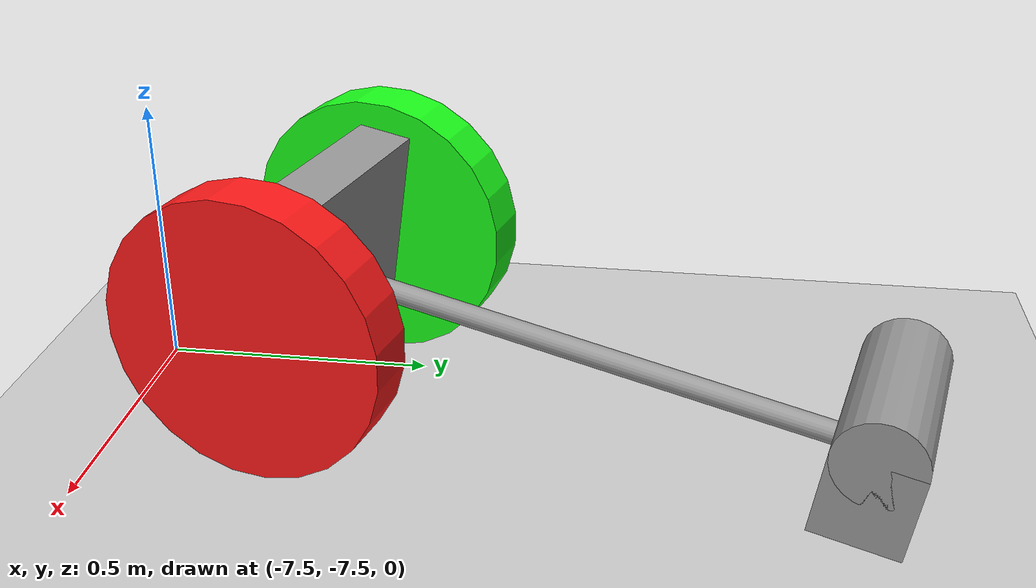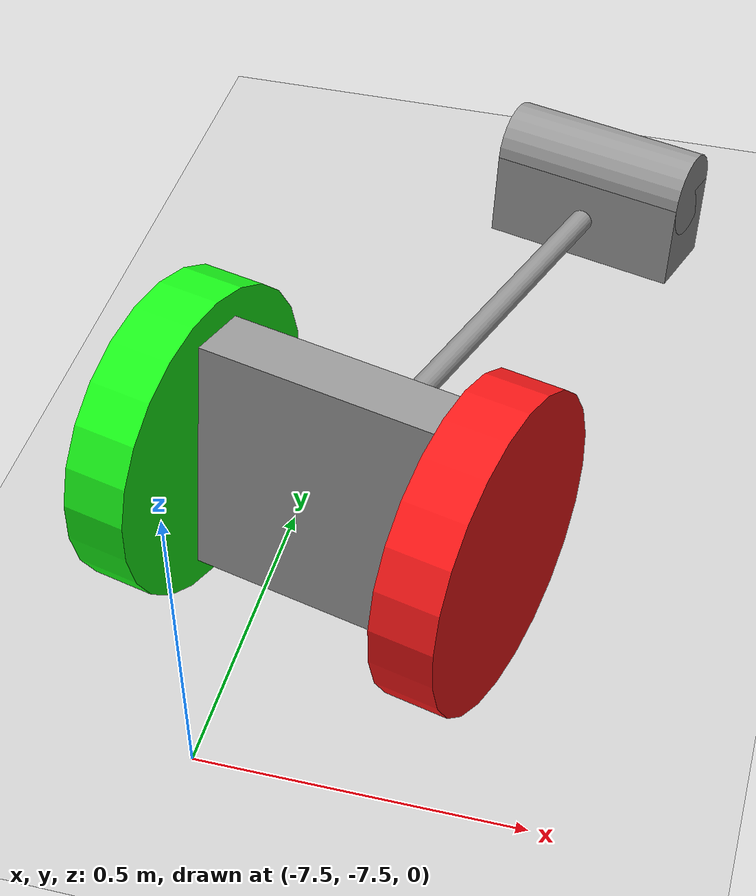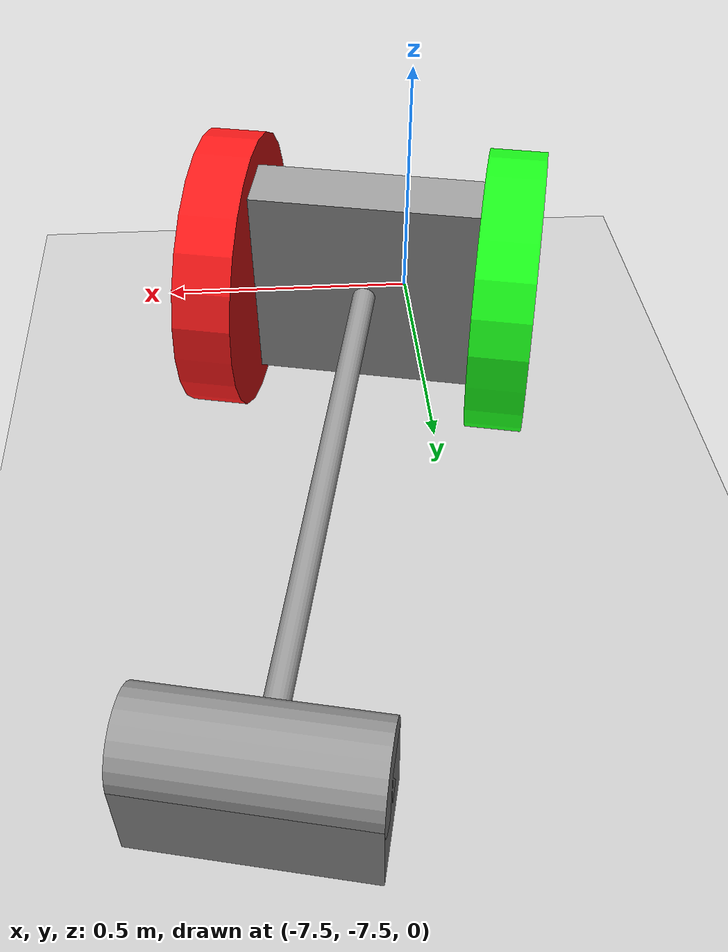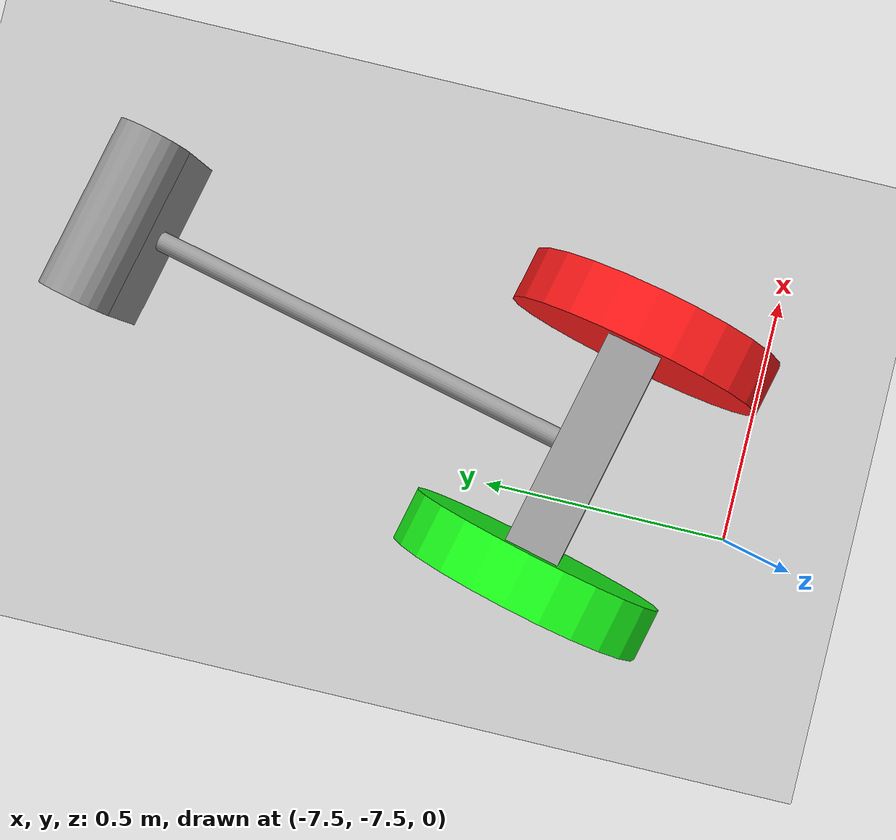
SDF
<sdf version="1.6">
 <world name="default">
  <model name="ground_plane">
   <static>1</static>
   <link name="link">
    <collision name="collision">
     <geometry><plane><normal>0 0 1</normal><size>100 100</size></plane></geometry>
     <surface><friction><ode><mu>100</mu><mu2>50</mu2></ode></friction></surface>
    </collision>
    <visual name="visual">
     <cast_shadows>0</cast_shadows>
     <geometry><plane><normal>0 0 1</normal><size>100 100</size></plane></geometry>
     <material>
      <script><uri>file://media/materials/scripts/gazebo.material</uri><name>Gazebo/Grey</name></script>
     </material>
    </visual>
   </link>
  </model>
  <model name="TwoWheelBalancer_0">
   <link name="link_0">
    <pose>0.012232 0 -0.27143 0 -0 0</pose>
    <inertial>
     <mass>1</mass>
     <inertia>
      <ixx>0.166667</ixx>
      <ixy>0</ixy>
      <ixz>0</ixz>
      <iyy>0.166667</iyy>
      <iyz>0</iyz>
      <izz>0.166667</izz>
     </inertia>
    </inertial>
    <visual name="visual">
     <geometry><box><size>0.4 0.4 0.1</size></box></geometry>
     <material>
      <lighting>1</lighting>
      <script><uri>file://media/materials/scripts/gazebo.material</uri><name>Gazebo/Grey</name></script>
      <shader type="pixel"><normal_map>__default__</normal_map></shader>
      <ambient>0.3 0.3 0.3 1</ambient>
      <diffuse>0.7 0.7 0.7 1</diffuse>
      <specular>0.01 0.01 0.01 1</specular>
      <emissive>0 0 0 1</emissive>
     </material>
    </visual>
    <collision name="collision">
     <geometry><box><size>0.4 0.4 0.1</size></box></geometry>
     <surface>
      <friction>
       <ode><mu>1</mu><mu2>1</mu2><fdir1>0 0 0</fdir1><slip1>0</slip1><slip2>0</slip2></ode>
       <torsional>
        <coefficient>1</coefficient>
        <patch_radius>0</patch_radius>
        <surface_radius>0</surface_radius>
        <use_patch_radius>1</use_patch_radius>
        <ode><slip>0</slip></ode>
       </torsional>
      </friction>
      <bounce><restitution_coefficient>0</restitution_coefficient><threshold>1e+06</threshold></bounce>
      <contact>
       <collide_without_contact>0</collide_without_contact>
       <collide_without_contact_bitmask>1</collide_without_contact_bitmask>
       <collide_bitmask>1</collide_bitmask>
       <ode>
        <soft_cfm>0</soft_cfm>
        <soft_erp>0.2</soft_erp>
        <kp>1e+13</kp>
        <kd>1</kd>
        <max_vel>0.01</max_vel>
        <min_depth>0</min_depth>
       </ode>
       <bullet>
        <split_impulse>1</split_impulse>
        <split_impulse_penetration_threshold>-0.01</split_impulse_penetration_threshold>
        <soft_cfm>0</soft_cfm>
        <soft_erp>0.2</soft_erp>
        <kp>1e+13</kp>
        <kd>1</kd>
       </bullet>
      </contact>
     </surface>
    </collision>
   </link>
   <link name="link_1">
    <pose>0.012232 0.250024 -0.27143 0 -0 0</pose>
    <inertial>
     <mass>1</mass>
     <inertia><ixx>0.145833</ixx><ixy>0</ixy><ixz>0</ixz><iyy>0.145833</iyy><iyz>0</iyz><izz>0.125</izz></inertia>
    </inertial>
    <visual name="visual">
     <pose>0 0 0 1.5707 -0 0</pose>
     <geometry><cylinder><radius>0.25</radius><length>0.1</length></cylinder></geometry>
     <material>
      <lighting>1</lighting>
      <script><uri>file://media/materials/scripts/gazebo.material</uri><name>Gazebo/Grey</name></script>
      <shader type="pixel"><normal_map>__default__</normal_map></shader>
      <ambient>0.1 1 0.1 1</ambient>
      <diffuse>0.1 1 0.1 1</diffuse>
      <specular>0.01 0.01 0.01 1</specular>
      <emissive>0 0 0 1</emissive>
     </material>
    </visual>
    <collision name="collision">
     <pose>0 0 0 1.5707 -0 0</pose>
     <geometry><cylinder><radius>0.25</radius><length>0.1</length></cylinder></geometry>
     <surface>
      <friction>
       <ode><mu>1</mu><mu2>1</mu2><fdir1>0 0 0</fdir1><slip1>0</slip1><slip2>0</slip2></ode>
       <torsional>
        <coefficient>1</coefficient>
        <patch_radius>0</patch_radius>
        <surface_radius>0</surface_radius>
        <use_patch_radius>1</use_patch_radius>
        <ode><slip>0</slip></ode>
       </torsional>
      </friction>
      <bounce><restitution_coefficient>0</restitution_coefficient><threshold>1e+06</threshold></bounce>
      <contact>
       <collide_without_contact>0</collide_without_contact>
       <collide_without_contact_bitmask>1</collide_without_contact_bitmask>
       <collide_bitmask>1</collide_bitmask>
       <ode>
        <soft_cfm>0</soft_cfm>
        <soft_erp>0.2</soft_erp>
        <kp>1e+13</kp>
        <kd>1</kd>
        <max_vel>0.01</max_vel>
        <min_depth>0</min_depth>
       </ode>
       <bullet>
        <split_impulse>1</split_impulse>
        <split_impulse_penetration_threshold>-0.01</split_impulse_penetration_threshold>
        <soft_cfm>0</soft_cfm>
        <soft_erp>0.2</soft_erp>
        <kp>1e+13</kp>
        <kd>1</kd>
       </bullet>
      </contact>
     </surface>
    </collision>
   </link>
   <link name="link_1_clone">
    <pose>0.012232 -0.250024 -0.27143 0 -0 0</pose>
    <inertial>
     <mass>1</mass>
     <inertia><ixx>0.145833</ixx><ixy>0</ixy><ixz>0</ixz><iyy>0.145833</iyy><iyz>0</iyz><izz>0.125</izz></inertia>
    </inertial>
    <visual name="visual">
     <pose>0 0 0 1.5707 -0 0</pose>
     <geometry><cylinder><radius>0.25</radius><length>0.1</length></cylinder></geometry>
     <material>
      <lighting>1</lighting>
      <script><uri>file://media/materials/scripts/gazebo.material</uri><name>Gazebo/Grey</name></script>
      <shader type="pixel"><normal_map>__default__</normal_map></shader>
      <ambient>1 0.1 0.1 1</ambient>
      <diffuse>1 0.1 0.1 1</diffuse>
      <specular>0.01 0.01 0.01 1</specular>
      <emissive>0 0 0 1</emissive>
     </material>
    </visual>
    <collision name="collision">
     <pose>0 0 0 1.5707 -0 0</pose>
     <geometry><cylinder><radius>0.25</radius><length>0.1</length></cylinder></geometry>
     <surface>
      <friction>
       <ode><mu>1</mu><mu2>1</mu2><fdir1>0 0 0</fdir1><slip1>0</slip1><slip2>0</slip2></ode>
       <torsional>
        <coefficient>1</coefficient>
        <patch_radius>0</patch_radius>
        <surface_radius>0</surface_radius>
        <use_patch_radius>1</use_patch_radius>
        <ode><slip>0</slip></ode>
       </torsional>
      </friction>
      <bounce><restitution_coefficient>0</restitution_coefficient><threshold>1e+06</threshold></bounce>
      <contact>
       <collide_without_contact>0</collide_without_contact>
       <collide_without_contact_bitmask>1</collide_without_contact_bitmask>
       <collide_bitmask>1</collide_bitmask>
       <ode>
        <soft_cfm>0</soft_cfm>
        <soft_erp>0.2</soft_erp>
        <kp>1e+13</kp>
        <kd>1</kd>
        <max_vel>0.01</max_vel>
        <min_depth>0</min_depth>
       </ode>
       <bullet>
        <split_impulse>1</split_impulse>
        <split_impulse_penetration_threshold>-0.01</split_impulse_penetration_threshold>
        <soft_cfm>0</soft_cfm>
        <soft_erp>0.2</soft_erp>
        <kp>1e+13</kp>
        <kd>1</kd>
       </bullet>
      </contact>
     </surface>
    </collision>
   </link>
   <link name="link_2">
    <pose>0.012232 0 -0.27143 0 -0 0</pose>
    <inertial>
     <mass>1</mass>
     <inertia><ixx>0.145833</ixx><ixy>0</ixy><ixz>0</ixz><iyy>0.145833</iyy><iyz>0</iyz><izz>0.125</izz></inertia>
    </inertial>
    <visual name="visual">
     <pose>0 0 0.5 0 -0 0</pose>
     <geometry><cylinder><radius>0.02</radius><length>1</length></cylinder></geometry>
     <material>
      <lighting>1</lighting>
      <script><uri>file://media/materials/scripts/gazebo.material</uri><name>Gazebo/Grey</name></script>
      <shader type="pixel"><normal_map>__default__</normal_map></shader>
      <ambient>0.3 0.3 0.3 1</ambient>
      <diffuse>0.7 0.7 0.7 1</diffuse>
      <specular>0.01 0.01 0.01 1</specular>
      <emissive>0 0 0 1</emissive>
     </material>
    </visual>
    <collision name="collision">
     <pose>0 0 0.5 0 -0 0</pose>
     <geometry><cylinder><radius>0.02</radius><length>1</length></cylinder></geometry>
     <surface>
      <friction>
       <ode><mu>1</mu><mu2>1</mu2><fdir1>0 0 0</fdir1><slip1>0</slip1><slip2>0</slip2></ode>
       <torsional>
        <coefficient>1</coefficient>
        <patch_radius>0</patch_radius>
        <surface_radius>0</surface_radius>
        <use_patch_radius>1</use_patch_radius>
        <ode><slip>0</slip></ode>
       </torsional>
      </friction>
      <bounce><restitution_coefficient>0</restitution_coefficient><threshold>1e+06</threshold></bounce>
      <contact>
       <collide_without_contact>0</collide_without_contact>
       <collide_without_contact_bitmask>1</collide_without_contact_bitmask>
       <collide_bitmask>1</collide_bitmask>
       <ode>
        <soft_cfm>0</soft_cfm>
        <soft_erp>0.2</soft_erp>
        <kp>1e+13</kp>
        <kd>1</kd>
        <max_vel>0.01</max_vel>
        <min_depth>0</min_depth>
       </ode>
       <bullet>
        <split_impulse>1</split_impulse>
        <split_impulse_penetration_threshold>-0.01</split_impulse_penetration_threshold>
        <soft_cfm>0</soft_cfm>
        <soft_erp>0.2</soft_erp>
        <kp>1e+13</kp>
        <kd>1</kd>
       </bullet>
      </contact>
     </surface>
    </collision>
   </link>
   <link name="link_3">
    <pose>0.012232 0 0.728572 0 -0 0</pose>
    <inertial>
     <mass>1</mass>
     <inertia>
      <ixx>0.166667</ixx>
      <ixy>0</ixy>
      <ixz>0</ixz>
      <iyy>0.166667</iyy>
      <iyz>0</iyz>
      <izz>0.166667</izz>
     </inertia>
    </inertial>
    <visual name="visual">
     <geometry><box><size>0.15 0.35 0.15</size></box></geometry>
     <material>
      <lighting>1</lighting>
      <script><uri>file://media/materials/scripts/gazebo.material</uri><name>Gazebo/Grey</name></script>
      <shader type="pixel"><normal_map>__default__</normal_map></shader>
      <ambient>0.3 0.3 0.3 1</ambient>
      <diffuse>0.7 0.7 0.7 1</diffuse>
      <specular>0.01 0.01 0.01 1</specular>
      <emissive>0 0 0 1</emissive>
     </material>
    </visual>
    <collision name="collision">
     <geometry><box><size>0.15 0.35 0.15</size></box></geometry>
     <surface>
      <friction>
       <ode><mu>1</mu><mu2>1</mu2><fdir1>0 0 0</fdir1><slip1>0</slip1><slip2>0</slip2></ode>
       <torsional>
        <coefficient>1</coefficient>
        <patch_radius>0</patch_radius>
        <surface_radius>0</surface_radius>
        <use_patch_radius>1</use_patch_radius>
        <ode><slip>0</slip></ode>
       </torsional>
      </friction>
      <bounce><restitution_coefficient>0</restitution_coefficient><threshold>1e+06</threshold></bounce>
      <contact>
       <collide_without_contact>0</collide_without_contact>
       <collide_without_contact_bitmask>1</collide_without_contact_bitmask>
       <collide_bitmask>1</collide_bitmask>
       <ode>
        <soft_cfm>0</soft_cfm>
        <soft_erp>0.2</soft_erp>
        <kp>1e+13</kp>
        <kd>1</kd>
        <max_vel>0.01</max_vel>
        <min_depth>0</min_depth>
       </ode>
       <bullet>
        <split_impulse>1</split_impulse>
        <split_impulse_penetration_threshold>-0.01</split_impulse_penetration_threshold>
        <soft_cfm>0</soft_cfm>
        <soft_erp>0.2</soft_erp>
        <kp>1e+13</kp>
        <kd>1</kd>
       </bullet>
      </contact>
     </surface>
    </collision>
   </link>
   <link name="link_5">
    <pose>0.092232 -0.12 0.728571 0 -0 0</pose>
    <inertial>
     <mass>1</mass>
     <inertia><ixx>0.145833</ixx><ixy>0</ixy><ixz>0</ixz><iyy>0.145833</iyy><iyz>0</iyz><izz>0.125</izz></inertia>
    </inertial>
    <visual name="visual">
     <pose>0 0 0 0 1.5707 0</pose>
     <geometry><cylinder><radius>0.025</radius><length>0.02</length></cylinder></geometry>
     <material>
      <lighting>1</lighting>
      <script><uri>file://media/materials/scripts/gazebo.material</uri><name>Gazebo/Grey</name></script>
      <shader type="pixel"><normal_map>__default__</normal_map></shader>
      <ambient>0 0 0 1</ambient>
      <diffuse>0 0 0 1</diffuse>
      <specular>0.01 0.01 0.01 1</specular>
      <emissive>0 0 0 1</emissive>
     </material>
    </visual>
    <collision name="collision">
     <geometry><cylinder><radius>0.025</radius><length>0.02</length></cylinder></geometry>
     <surface>
      <friction>
       <ode><mu>1</mu><mu2>1</mu2><fdir1>0 0 0</fdir1><slip1>0</slip1><slip2>0</slip2></ode>
       <torsional>
        <coefficient>1</coefficient>
        <patch_radius>0</patch_radius>
        <surface_radius>0</surface_radius>
        <use_patch_radius>1</use_patch_radius>
        <ode><slip>0</slip></ode>
       </torsional>
      </friction>
      <bounce><restitution_coefficient>0</restitution_coefficient><threshold>1e+06</threshold></bounce>
      <contact>
       <collide_without_contact>0</collide_without_contact>
       <collide_without_contact_bitmask>1</collide_without_contact_bitmask>
       <collide_bitmask>1</collide_bitmask>
       <ode>
        <soft_cfm>0</soft_cfm>
        <soft_erp>0.2</soft_erp>
        <kp>1e+13</kp>
        <kd>1</kd>
        <max_vel>0.01</max_vel>
        <min_depth>0</min_depth>
       </ode>
       <bullet>
        <split_impulse>1</split_impulse>
        <split_impulse_penetration_threshold>-0.01</split_impulse_penetration_threshold>
        <soft_cfm>0</soft_cfm>
        <soft_erp>0.2</soft_erp>
        <kp>1e+13</kp>
        <kd>1</kd>
       </bullet>
      </contact>
     </surface>
    </collision>
   </link>
   <link name="link_5_clone">
    <pose>0.092232 0.12 0.728571 0 -0 0</pose>
    <inertial>
     <mass>1</mass>
     <inertia><ixx>0.145833</ixx><ixy>0</ixy><ixz>0</ixz><iyy>0.145833</iyy><iyz>0</iyz><izz>0.125</izz></inertia>
    </inertial>
    <visual name="visual">
     <pose>0 0 0 0 1.5707 0</pose>
     <geometry><cylinder><radius>0.025</radius><length>0.02</length></cylinder></geometry>
     <material>
      <lighting>1</lighting>
      <script><uri>file://media/materials/scripts/gazebo.material</uri><name>Gazebo/Grey</name></script>
      <shader type="pixel"><normal_map>__default__</normal_map></shader>
      <ambient>0 0 0 1</ambient>
      <diffuse>0 0 0 1</diffuse>
      <specular>0.01 0.01 0.01 1</specular>
      <emissive>0 0 0 1</emissive>
     </material>
    </visual>
    <collision name="collision">
     <geometry><cylinder><radius>0.025</radius><length>0.02</length></cylinder></geometry>
     <surface>
      <friction>
       <ode><mu>1</mu><mu2>1</mu2><fdir1>0 0 0</fdir1><slip1>0</slip1><slip2>0</slip2></ode>
       <torsional>
        <coefficient>1</coefficient>
        <patch_radius>0</patch_radius>
        <surface_radius>0</surface_radius>
        <use_patch_radius>1</use_patch_radius>
        <ode><slip>0</slip></ode>
       </torsional>
      </friction>
      <bounce><restitution_coefficient>0</restitution_coefficient><threshold>1e+06</threshold></bounce>
      <contact>
       <collide_without_contact>0</collide_without_contact>
       <collide_without_contact_bitmask>1</collide_without_contact_bitmask>
       <collide_bitmask>1</collide_bitmask>
       <ode>
        <soft_cfm>0</soft_cfm>
        <soft_erp>0.2</soft_erp>
        <kp>1e+13</kp>
        <kd>1</kd>
        <max_vel>0.01</max_vel>
        <min_depth>0</min_depth>
       </ode>
       <bullet>
        <split_impulse>1</split_impulse>
        <split_impulse_penetration_threshold>-0.01</split_impulse_penetration_threshold>
        <soft_cfm>0</soft_cfm>
        <soft_erp>0.2</soft_erp>
        <kp>1e+13</kp>
        <kd>1</kd>
       </bullet>
      </contact>
     </surface>
    </collision>
   </link>
   <link name="link_6">
    <pose>-0.062768 -0 0.728572 1.57079 -0 0</pose>
    <inertial>
     <mass>1</mass>
     <inertia><ixx>0.145833</ixx><ixy>0</ixy><ixz>0</ixz><iyy>0.145833</iyy><iyz>0</iyz><izz>0.125</izz></inertia>
    </inertial>
    <visual name="visual">
     <geometry><cylinder><radius>0.075</radius><length>0.35</length></cylinder></geometry>
     <material>
      <lighting>1</lighting>
      <script><uri>file://media/materials/scripts/gazebo.material</uri><name>Gazebo/Grey</name></script>
      <shader type="pixel"><normal_map>__default__</normal_map></shader>
      <ambient>0.3 0.3 0.3 1</ambient>
      <diffuse>0.7 0.7 0.7 1</diffuse>
      <specular>0.01 0.01 0.01 1</specular>
      <emissive>0 0 0 1</emissive>
     </material>
    </visual>
    <collision name="collision">
     <geometry><cylinder><radius>0.075</radius><length>0.35</length></cylinder></geometry>
     <surface>
      <friction>
       <ode><mu>1</mu><mu2>1</mu2><fdir1>0 0 0</fdir1><slip1>0</slip1><slip2>0</slip2></ode>
       <torsional>
        <coefficient>1</coefficient>
        <patch_radius>0</patch_radius>
        <surface_radius>0</surface_radius>
        <use_patch_radius>1</use_patch_radius>
        <ode><slip>0</slip></ode>
       </torsional>
      </friction>
      <bounce><restitution_coefficient>0</restitution_coefficient><threshold>1e+06</threshold></bounce>
      <contact>
       <collide_without_contact>0</collide_without_contact>
       <collide_without_contact_bitmask>1</collide_without_contact_bitmask>
       <collide_bitmask>1</collide_bitmask>
       <ode>
        <soft_cfm>0</soft_cfm>
        <soft_erp>0.2</soft_erp>
        <kp>1e+13</kp>
        <kd>1</kd>
        <max_vel>0.01</max_vel>
        <min_depth>0</min_depth>
       </ode>
       <bullet>
        <split_impulse>1</split_impulse>
        <split_impulse_penetration_threshold>-0.01</split_impulse_penetration_threshold>
        <soft_cfm>0</soft_cfm>
        <soft_erp>0.2</soft_erp>
        <kp>1e+13</kp>
        <kd>1</kd>
       </bullet>
      </contact>
     </surface>
    </collision>
   </link>
   <joint name="link_0_JOINT_0" type="revolute">
    <parent>link_0</parent>
    <child>link_1</child>
    <axis>
     <xyz>0 0 1</xyz>
     <use_parent_model_frame>0</use_parent_model_frame>
     <limit>
      <lower>-1.79769e+308</lower>
      <upper>1.79769e+308</upper>
      <effort>-1</effort>
      <velocity>-1</velocity>
     </limit>
     <dynamics>
      <spring_reference>0</spring_reference>
      <spring_stiffness>0</spring_stiffness>
      <damping>0</damping>
      <friction>0</friction>
     </dynamics>
    </axis>
    <physics>
     <ode><limit><cfm>0</cfm><erp>0.2</erp></limit><suspension><cfm>0</cfm><erp>0.2</erp></suspension></ode>
    </physics>
   </joint>
   <joint name="link_0_JOINT_1" type="revolute">
    <parent>link_0</parent>
    <child>link_1_clone</child>
    <axis>
     <xyz>0 0 1</xyz>
     <use_parent_model_frame>0</use_parent_model_frame>
     <limit>
      <lower>-1.79769e+308</lower>
      <upper>1.79769e+308</upper>
      <effort>-1</effort>
      <velocity>-1</velocity>
     </limit>
     <dynamics>
      <spring_reference>0</spring_reference>
      <spring_stiffness>0</spring_stiffness>
      <damping>0</damping>
      <friction>0</friction>
     </dynamics>
    </axis>
    <physics>
     <ode><limit><cfm>0</cfm><erp>0.2</erp></limit><suspension><cfm>0</cfm><erp>0.2</erp></suspension></ode>
    </physics>
   </joint>
   <joint name="link_0_JOINT_2" type="fixed">
    <parent>link_0</parent>
    <child>link_2</child>
    <physics>
     <ode><limit><cfm>0</cfm><erp>0.2</erp></limit><suspension><cfm>0</cfm><erp>0.2</erp></suspension></ode>
    </physics>
   </joint>
   <joint name="link_2_JOINT_3" type="revolute">
    <parent>link_2</parent>
    <child>link_3</child>
    <axis>
     <xyz>1 0 0</xyz>
     <use_parent_model_frame>0</use_parent_model_frame>
     <limit>
      <lower>-1.79769e+308</lower>
      <upper>1.79769e+308</upper>
      <effort>-1</effort>
      <velocity>-1</velocity>
     </limit>
     <dynamics>
      <spring_reference>0</spring_reference>
      <spring_stiffness>0</spring_stiffness>
      <damping>0</damping>
      <friction>0</friction>
     </dynamics>
    </axis>
    <physics>
     <ode><limit><cfm>0</cfm><erp>0.2</erp></limit><suspension><cfm>0</cfm><erp>0.2</erp></suspension></ode>
    </physics>
   </joint>
   <joint name="link_3_JOINT_4" type="fixed">
    <parent>link_3</parent>
    <child>link_5</child>
    <physics>
     <ode><limit><cfm>0</cfm><erp>0.2</erp></limit><suspension><cfm>0</cfm><erp>0.2</erp></suspension></ode>
    </physics>
   </joint>
   <joint name="link_3_JOINT_5" type="fixed">
    <parent>link_3</parent>
    <child>link_5_clone</child>
    <physics>
     <ode><limit><cfm>0</cfm><erp>0.2</erp></limit><suspension><cfm>0</cfm><erp>0.2</erp></suspension></ode>
    </physics>
   </joint>
   <joint name="link_3_JOINT_6" type="fixed">
    <parent>link_3</parent>
    <child>link_6</child>
    <physics>
     <ode><limit><cfm>0</cfm><erp>0.2</erp></limit><suspension><cfm>0</cfm><erp>0.2</erp></suspension></ode>
    </physics>
   </joint>
   <static>0</static>
   <pose>-7.32432 -6.8861 0.223581 3.1135 1.42453 -1.82903</pose>
  </model>
 </world>
</sdf>
